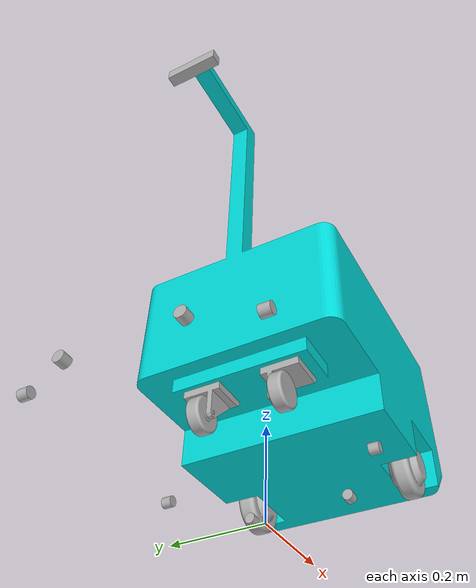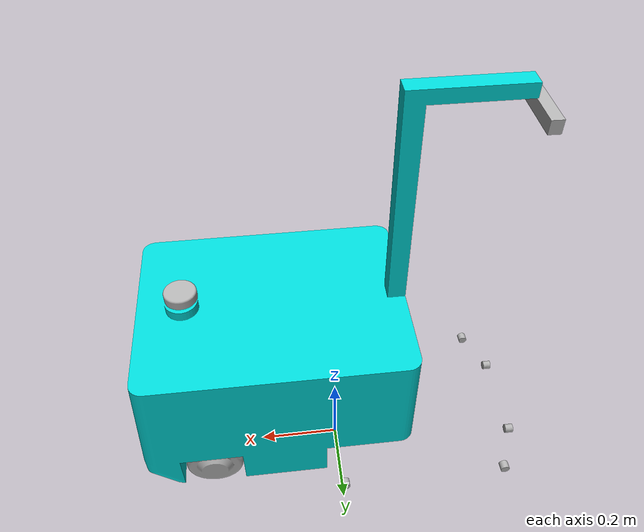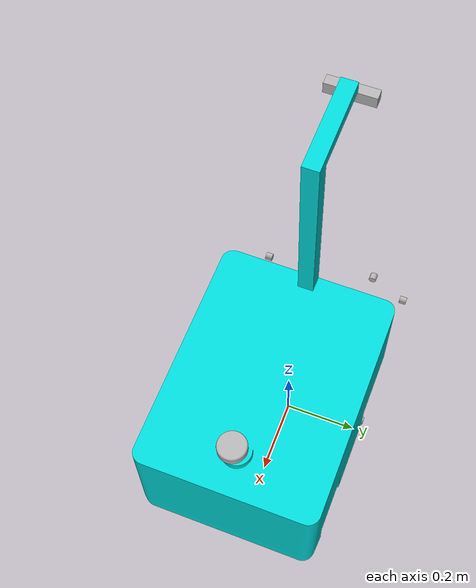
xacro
<?xml version="1.0" ?>
<robot name="VICA" xmlns:xacro="http://www.ros.org/wiki/xacro">

<xacro:include filename="$(find vica_description)/urdf/materials.xacro" />
<!-- Measured heights from the ground-aligned base_footprint. -->
<!-- base_link=0.190, laser_frame=0.382, camera_link=0.320 [m] -->
<!-- 이 값을 바꾸면 base_link/laser_frame 메시(visual·collision 4곳)만 따라온다.
     구동륜·캐스터 메시는 joint z(-0.125)와 visual z(+0.084)에 이 값을 별도로
     인코딩하고 있어 함께 손봐야 한다. -->
<xacro:property name="body_center_z" value="0.041" />
<xacro:property name="base_link_height" value="0.19" />

<xacro:property name="axle_offset_x" value="0.154" />

<!-- 아래 센서 x 값은 전부 **차체 중심** 기준 줄자 실측이다. base_link 원점은
     이제 구동륜 축이므로 joint 에서 axle_offset_x 를 뺀다. 실측값 자체는
     그대로 두어야 다음 사람이 줄자와 대조할 수 있다. -->
<xacro:property name="laser_x" value="0.185" />
<xacro:property name="laser_y" value="0.0" />
<xacro:property name="laser_z" value="0.192" />
<xacro:property name="laser_yaw" value="-0.0346" />
<xacro:property name="usonic_x" value="0.305" />
<xacro:property name="usonic_y" value="0.107" />
<xacro:property name="usonic_z" value="-0.0987" />
<xacro:property name="camera_x" value="-0.225" />
<xacro:property name="camera_y" value="0.0" />
<xacro:property name="camera_z" value="0.788" />
<xacro:property name="camera_pitch" value="-0.0124" />  <!-- 0.7 도, 위로 -->
<!-- Drive wheel / caster geometry. Single source for every y coordinate. -->
<!-- 줄자 실측(바퀴 중심 사이). CAD 0.3618과 2.2 mm 차이.
     encoder.yaml의 wheel_base_m 0.37은 회전 시험으로 맞춘 오도메트리 보정 상수라
     이 값과 다르다. 통일 대상이 아니다 — 스펙 3.1.1절. -->
<xacro:property name="wheel_separation" value="0.364" />
<xacro:property name="wheel_y" value="${wheel_separation / 2}" />
<!-- CAD 실측: steer ±0.0845, wheel ±0.0795 -->
<xacro:property name="caster_steer_y" value="0.0845" />
<xacro:property name="caster_y" value="0.0795" />
<!-- steer 링크 기준 wheel 조인트의 y. round()는 부동소수점 꼬리를 자른다. -->
<xacro:property name="caster_wheel_dy" value="${round(caster_y - caster_steer_y, 6)}" />

<link name="base_footprint"/>

<joint name="base_footprint_joint" type="fixed">
  <origin xyz="0 0 ${base_link_height}" rpy="0 0 0"/>
  <parent link="base_footprint"/>
  <child link="base_link"/>
</joint>

<link name="base_link">
  <inertial>
    <origin xyz="${0.004031215194176557 - axle_offset_x} 3.002726997808124e-17 0.03506562657816282" rpy="0 0 0"/>
    <mass value="90.84709962539795"/>
    <inertia ixx="2.402108" iyy="3.622523" izz="4.166828" ixy="0.0" iyz="-0.0" ixz="0.343284"/>
  </inertial>
  <visual>
    <origin xyz="${-axle_offset_x} 0 -${body_center_z}" rpy="0 0 0"/>
    <geometry>
      <mesh filename="package://vica_description/meshes/base_link_mast.stl" scale="0.001 0.001 0.001"/>
    </geometry>
    <material name="body_blue"/>
  </visual>
  <collision>
    <origin xyz="${-axle_offset_x} 0 -${body_center_z}" rpy="0 0 0"/>
    <geometry>
      <mesh filename="package://vica_description/meshes/base_link.stl" scale="0.001 0.001 0.001"/>
    </geometry>
  </collision>
</link>

<link name="left_wheel_1">
  <inertial>
    <origin xyz="2.0539125955565396e-15 0.03668765550201605 0.0" rpy="0 0 0"/>
    <mass value="0.5663250710944822"/>
    <inertia ixx="0.000634" iyy="0.001025" izz="0.000634" ixy="0.0" iyz="-0.0" ixz="0.0"/>
  </inertial>
  <visual>
    <origin xyz="-0.154 ${-wheel_y} 0.084" rpy="0 0 0"/>
    <geometry>
      <mesh filename="package://vica_description/meshes/left_wheel_1.stl" scale="0.001 0.001 0.001"/>
    </geometry>
    <material name="silver"/>
  </visual>
  <collision>
    <origin xyz="-0.154 ${-wheel_y} 0.084" rpy="0 0 0"/>
    <geometry>
      <mesh filename="package://vica_description/meshes/left_wheel_1.stl" scale="0.001 0.001 0.001"/>
    </geometry>
  </collision>
</link>

<link name="right_wheel_1">
  <inertial>
    <origin xyz="-0.00046568184733652984 -0.03568765550201608 0.0009570426748952837" rpy="0 0 0"/>
    <mass value="0.5663250710944814"/>
    <inertia ixx="0.000634" iyy="0.001025" izz="0.000634" ixy="0.0" iyz="0.0" ixz="-0.0"/>
  </inertial>
  <visual>
    <origin xyz="-0.154 ${wheel_y} 0.084" rpy="0 0 0"/>
    <geometry>
      <mesh filename="package://vica_description/meshes/right_wheel_1.stl" scale="0.001 0.001 0.001"/>
    </geometry>
    <material name="silver"/>
  </visual>
  <collision>
    <origin xyz="-0.154 ${wheel_y} 0.084" rpy="0 0 0"/>
    <geometry>
      <mesh filename="package://vica_description/meshes/right_wheel_1.stl" scale="0.001 0.001 0.001"/>
    </geometry>
  </collision>
</link>

<link name="front_left_caster_wheel_1">
  <inertial>
    <origin xyz="-1.6653345369377348e-15 0.01574568542726719 0.0" rpy="0 0 0"/>
    <mass value="0.11451893837110633"/>
    <inertia ixx="4.7e-05" iyy="7.8e-05" izz="4.7e-05" ixy="-0.0" iyz="0.0" ixz="0.0"/>
  </inertial>
  <visual>
    <origin xyz="0.252 ${-caster_y} 0.107" rpy="0 0 0"/>
    <geometry>
      <mesh filename="package://vica_description/meshes/front_left_caster_wheel_1.stl" scale="0.001 0.001 0.001"/>
    </geometry>
    <material name="silver"/>
  </visual>
  <collision>
    <origin xyz="0.252 ${-caster_y} 0.107" rpy="0 0 0"/>
    <geometry>
      <mesh filename="package://vica_description/meshes/front_left_caster_wheel_1.stl" scale="0.001 0.001 0.001"/>
    </geometry>
  </collision>
</link>

<link name="front_right_caster_wheel_1">
  <inertial>
    <origin xyz="5.162537064506978e-15 -0.015745685427267203 0.0" rpy="0 0 0"/>
    <mass value="0.11451893837110629"/>
    <inertia ixx="4.7e-05" iyy="7.8e-05" izz="4.7e-05" ixy="-0.0" iyz="0.0" ixz="-0.0"/>
  </inertial>
  <visual>
    <origin xyz="0.252 ${caster_y} 0.107" rpy="0 0 0"/>
    <geometry>
      <mesh filename="package://vica_description/meshes/front_right_caster_wheel_1.stl" scale="0.001 0.001 0.001"/>
    </geometry>
    <material name="silver"/>
  </visual>
  <collision>
    <origin xyz="0.252 ${caster_y} 0.107" rpy="0 0 0"/>
    <geometry>
      <mesh filename="package://vica_description/meshes/front_right_caster_wheel_1.stl" scale="0.001 0.001 0.001"/>
    </geometry>
  </collision>
</link>

<link name="front_right_caster_steer_1">
  <inertial>
    <origin xyz="-0.004080894044594496 0.0037449849629774684 -0.017666622102230287" rpy="0 0 0"/>
    <mass value="0.9536308497491053"/>
    <inertia ixx="0.000637" iyy="0.000626" izz="0.000908" ixy="4e-05" iyz="8.5e-05" ixz="-8.2e-05"/>
  </inertial>
  <visual>
    <origin xyz="0.222 ${caster_steer_y} 0.0415" rpy="0 0 0"/>
    <geometry>
      <mesh filename="package://vica_description/meshes/front_right_caster_steer_1.stl" scale="0.001 0.001 0.001"/>
    </geometry>
    <material name="silver"/>
  </visual>
  <collision>
    <origin xyz="0.222 ${caster_steer_y} 0.0415" rpy="0 0 0"/>
    <geometry>
      <mesh filename="package://vica_description/meshes/front_right_caster_steer_1.stl" scale="0.001 0.001 0.001"/>
    </geometry>
  </collision>
</link>

<link name="front_left_caster_steer_1">
  <inertial>
    <origin xyz="-0.004080894044594496 -0.003744984962977496 -0.017666622102230287" rpy="0 0 0"/>
    <mass value="0.9536308497491053"/>
    <inertia ixx="0.000637" iyy="0.000626" izz="0.000908" ixy="-4e-05" iyz="-8.5e-05" ixz="-8.2e-05"/>
  </inertial>
  <visual>
    <origin xyz="0.222 ${-caster_steer_y} 0.0415" rpy="0 0 0"/>
    <geometry>
      <mesh filename="package://vica_description/meshes/front_left_caster_steer_1.stl" scale="0.001 0.001 0.001"/>
    </geometry>
    <material name="silver"/>
  </visual>
  <collision>
    <origin xyz="0.222 ${-caster_steer_y} 0.0415" rpy="0 0 0"/>
    <geometry>
      <mesh filename="package://vica_description/meshes/front_left_caster_steer_1.stl" scale="0.001 0.001 0.001"/>
    </geometry>
  </collision>
</link>

<link name="laser_frame">
  <inertial>
    <origin xyz="0.0 0.0 0.010868727234877334" rpy="0 0 0"/>
    <mass value="0.16353480730457975"/>
    <inertia ixx="5.9e-05" iyy="5.9e-05" izz="0.000105" ixy="0.0" iyz="-0.0" ixz="-0.0"/>
  </inertial>
  <visual>
    <origin xyz="-0.185 -0.0 ${-(laser_z + body_center_z)}" rpy="0 0 0"/>
    <geometry>
      <mesh filename="package://vica_description/meshes/lidar_1.stl" scale="0.001 0.001 0.001"/>
    </geometry>
    <material name="silver"/>
  </visual>
  <collision>
    <origin xyz="-0.185 -0.0 ${-(laser_z + body_center_z)}" rpy="0 0 0"/>
    <geometry>
      <mesh filename="package://vica_description/meshes/lidar_1.stl" scale="0.001 0.001 0.001"/>
    </geometry>
  </collision>
</link>

<link name="camera_link">
  <!-- D455 visual placeholder: 26 x 124 x 29 mm -->
  <visual name="d455_body">
    <origin xyz="0 0 0" rpy="0 0 0"/>
    <geometry>
      <box size="0.026 0.124 0.029"/>
    </geometry>
    <material name="silver"/>
  </visual>
</link>

<joint name="left_wheel_joint" type="continuous">
  <origin xyz="${0.154 - axle_offset_x} ${wheel_y} -0.125" rpy="0 0 0"/>
  <parent link="base_link"/>
  <child link="left_wheel_1"/>
  <axis xyz="0.0 1.0 0.0"/>
</joint>

<joint name="right_wheel_joint" type="continuous">
  <origin xyz="${0.154 - axle_offset_x} ${-wheel_y} -0.125" rpy="0 0 0"/>
  <parent link="base_link"/>
  <child link="right_wheel_1"/>
  <axis xyz="0.0 1.0 0.0"/>
</joint>

<joint name="front_left_caster_wheel_joint" type="continuous">
  <origin xyz="-0.03 ${caster_wheel_dy} -0.0655" rpy="0 0 0"/>
  <parent link="front_left_caster_steer_1"/>
  <child link="front_left_caster_wheel_1"/>
  <axis xyz="0.0 -1.0 0.0"/>
</joint>

<joint name="front_right_caster_wheel_joint" type="continuous">
  <origin xyz="-0.03 ${-caster_wheel_dy} -0.0655" rpy="0 0 0"/>
  <parent link="front_right_caster_steer_1"/>
  <child link="front_right_caster_wheel_1"/>
  <axis xyz="0.0 -1.0 0.0"/>
</joint>

<joint name="front_right_caster_steer_joint" type="continuous">
  <origin xyz="${-0.222 - axle_offset_x} ${-caster_steer_y} -0.0825" rpy="0 0 0"/>
  <parent link="base_link"/>
  <child link="front_right_caster_steer_1"/>
  <axis xyz="0.0 0.0 -1.0"/>
</joint>

<joint name="front_left_caster_steer_joint" type="continuous">
  <origin xyz="${-0.222 - axle_offset_x} ${caster_steer_y} -0.0825" rpy="0 0 0"/>
  <parent link="base_link"/>
  <child link="front_left_caster_steer_1"/>
  <axis xyz="0.0 0.0 -1.0"/>
</joint>

<!-- Sensor positions are expressed relative to the body-centered base_link. -->
<joint name="laser_joint" type="fixed">
  <origin xyz="${laser_x - axle_offset_x} ${laser_y} ${laser_z}" rpy="0 0 ${laser_yaw}"/>
  <parent link="base_link"/>
  <child link="laser_frame"/>
</joint>

<xacro:property name="usonic_diameter" value="0.022" />
<xacro:property name="usonic_length" value="0.020" />

<xacro:macro name="usonic_visual">
  <visual name="dyp_a22_body">
    <origin xyz="${-usonic_length/2} 0 0" rpy="0 ${pi/2} 0"/>
    <geometry>
      <cylinder radius="${usonic_diameter/2}" length="${usonic_length}"/>
    </geometry>
    <material name="silver"/>
  </visual>
</xacro:macro>

<link name="usonic_front_left">
  <xacro:usonic_visual/>
</link>
<joint name="usonic_front_left_joint" type="fixed">
  <origin xyz="${usonic_x - axle_offset_x} ${usonic_y} ${usonic_z}" rpy="0 0 0"/>
  <parent link="base_link"/>
  <child link="usonic_front_left"/>
</joint>

<link name="usonic_front_right">
  <xacro:usonic_visual/>
</link>
<joint name="usonic_front_right_joint" type="fixed">
  <origin xyz="${usonic_x - axle_offset_x} ${-usonic_y} ${usonic_z}" rpy="0 0 0"/>
  <parent link="base_link"/>
  <child link="usonic_front_right"/>
</joint>

<xacro:property name="usonic_side_x"       value="0.154" />
<xacro:property name="usonic_side_y"       value="0.225" />
<xacro:property name="usonic_rear_wheel_x" value="-0.252" />
<xacro:property name="usonic_rear_x"       value="-0.305" />

<xacro:macro name="usonic_link" params="name x y yaw">
  <link name="${name}">
    <xacro:usonic_visual/>
  </link>
  <joint name="${name}_joint" type="fixed">
    <origin xyz="${x - axle_offset_x} ${y} ${usonic_z}" rpy="0 0 ${yaw}"/>
    <parent link="base_link"/>
    <child link="${name}"/>
  </joint>
</xacro:macro>

<xacro:usonic_link name="usonic_left_wheel"       x="${usonic_side_x}"       y="${usonic_side_y}"  yaw="${pi/2}"/>
<xacro:usonic_link name="usonic_right_wheel"      x="${usonic_side_x}"       y="${-usonic_side_y}" yaw="${-pi/2}"/>
<xacro:usonic_link name="usonic_right_rear_wheel" x="${usonic_rear_wheel_x}" y="${-usonic_side_y}" yaw="${-pi/2}"/>
<xacro:usonic_link name="usonic_rear_right"       x="${usonic_rear_x}"       y="${-usonic_y}"      yaw="${pi}"/>
<xacro:usonic_link name="usonic_rear_left"        x="${usonic_rear_x}"       y="${usonic_y}"       yaw="${pi}"/>
<xacro:usonic_link name="usonic_left_rear_wheel"  x="${usonic_rear_wheel_x}" y="${usonic_side_y}"  yaw="${pi/2}"/>

<joint name="camera_joint" type="fixed">
  <origin xyz="${camera_x - axle_offset_x} ${camera_y} ${camera_z}" rpy="0 ${camera_pitch} 0"/>
  <parent link="base_link"/>
  <child link="camera_link"/>
</joint>

<!-- REP-103: +Z forward, +X right, +Y down -->
<!-- 실물은 RealSense 드라이버가 자체 발행하지만, Isaac에는 드라이버가 없어
     URDF가 제공해야 한다. 정본을 하나로 유지하려고 여기에 둔다. -->
<link name="camera_optical_frame"/>
<joint name="camera_optical_joint" type="fixed">
  <origin xyz="0 0 0" rpy="-${pi/2} 0 -${pi/2}"/>
  <parent link="camera_link"/>
  <child  link="camera_optical_frame"/>
</joint>
</robot>

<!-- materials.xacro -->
<robot name="VICA" xmlns:xacro="http://www.ros.org/wiki/xacro" >

<material name="body_blue">
  <color rgba="0.0 0.85 0.85 1.0"/>
</material>

<material name="silver">
  <color rgba="0.70 0.70 0.70 1.0"/>
</material>

</robot>
